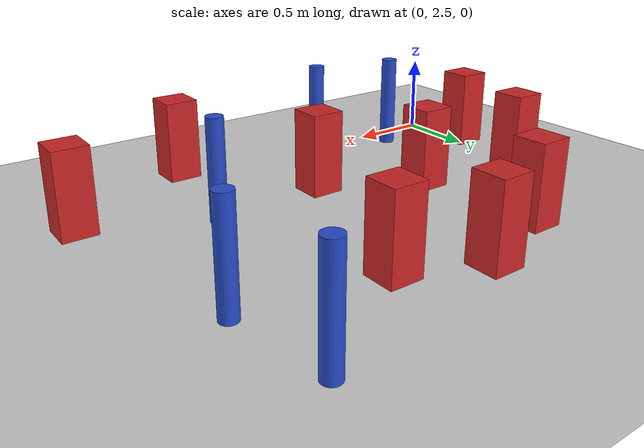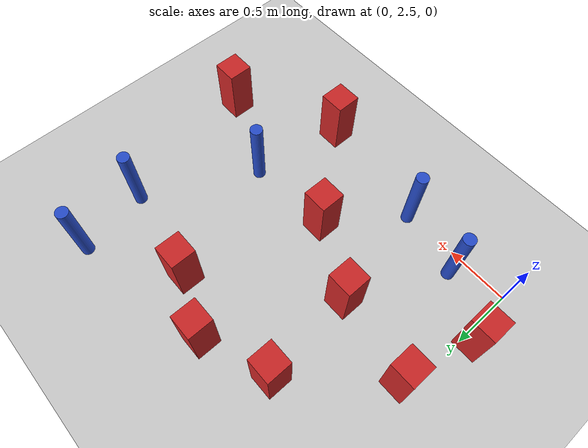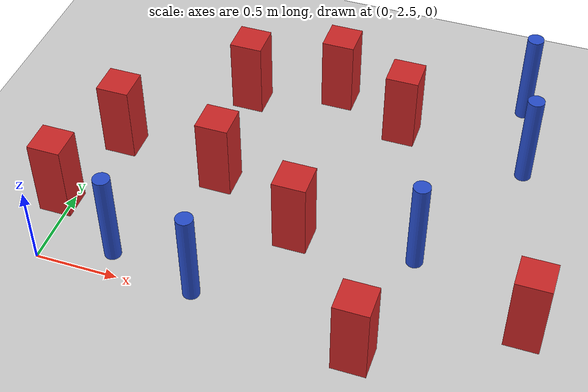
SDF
<sdf version="1.6">
 <world name="default">
  <model name="ground_plane">
   <static>1</static>
   <link name="link">
    <collision name="collision">
     <geometry><plane><normal>0 0 1</normal><size>100 100</size></plane></geometry>
     <surface><friction><ode><mu>100</mu><mu2>50</mu2></ode></friction></surface>
    </collision>
    <visual name="visual">
     <cast_shadows>0</cast_shadows>
     <geometry><plane><normal>0 0 1</normal><size>100 100</size></plane></geometry>
     <material>
      <ambient>1.0 1.0 1.0 1.0</ambient>
      <diffuse>0.8 0.8 0.8 1.0</diffuse>
      <specular>0.01 0.01 0.01 1.000000</specular>
     </material>
    </visual>
   </link>
  </model>
  <model name="square_post_obstacle31">
   <static>true</static>
   <pose>1.69926338025 4.18269708458 8.22691968438e-08 7.2212513382e-06 -7.54495500217e-07 2.29674213826e-05</pose>
   <link name="link">
    <pose>0 0 0.25 0 -0 0</pose>
    <inertial>
     <mass>100</mass>
     <inertia>
      <ixx>0.166667</ixx>
      <ixy>0</ixy>
      <ixz>0</ixz>
      <iyy>0.166667</iyy>
      <iyz>0</iyz>
      <izz>0.166667</izz>
     </inertia>
    </inertial>
    <collision name="collision"><geometry><box><size>.2 .2 .5</size></box></geometry></collision>
    <visual name="visual">
     <geometry><box><size>.2 .2 .5</size></box></geometry>
     <material>
      <script><name>Gazebo/Red</name><uri>file://media/materials/scripts/gazebo.material</uri></script>
     </material>
    </visual>
   </link>
  </model>
  <model name="square_post_obstacle38">
   <static>true</static>
   <pose>-0.0602586245994 2.94378712359 8.22691968438e-08 7.2212513382e-06 -7.54495500217e-07 2.29674213826e-05</pose>
   <link name="link">
    <pose>0 0 0.25 0 -0 0</pose>
    <inertial>
     <mass>100</mass>
     <inertia>
      <ixx>0.166667</ixx>
      <ixy>0</ixy>
      <ixz>0</ixz>
      <iyy>0.166667</iyy>
      <iyz>0</iyz>
      <izz>0.166667</izz>
     </inertia>
    </inertial>
    <collision name="collision"><geometry><box><size>.2 .2 .5</size></box></geometry></collision>
    <visual name="visual">
     <geometry><box><size>.2 .2 .5</size></box></geometry>
     <material>
      <script><name>Gazebo/Red</name><uri>file://media/materials/scripts/gazebo.material</uri></script>
     </material>
    </visual>
   </link>
  </model>
  <model name="pole_obstacle43">
   <static>true</static>
   <pose>2.50424480207 4.05057288636 2.88873142074e-08 -9.90536689859e-09 4.60219948989e-07 -1.20965994961e-07</pose>
   <link name="link">
    <pose>0 0 0.3 0 -0 0</pose>
    <inertial>
     <mass>1</mass>
     <inertia><ixx>0.145833</ixx><ixy>0</ixy><ixz>0</ixz><iyy>0.145833</iyy><iyz>0</iyz><izz>0.125</izz></inertia>
    </inertial>
    <collision name="collision">
     <geometry><cylinder><radius>0.05</radius><length>.6</length></cylinder></geometry>
    </collision>
    <visual name="visual">
     <geometry><cylinder><radius>0.05</radius><length>.6</length></cylinder></geometry>
     <material>
      <script><name>Gazebo/Blue</name><uri>file://media/materials/scripts/gazebo.material</uri></script>
     </material>
    </visual>
   </link>
  </model>
  <model name="square_post_obstacle56">
   <static>true</static>
   <pose>0.768524490775 3.41879723513 8.22691968438e-08 7.2212513382e-06 -7.54495500217e-07 2.29674213826e-05</pose>
   <link name="link">
    <pose>0 0 0.25 0 -0 0</pose>
    <inertial>
     <mass>100</mass>
     <inertia>
      <ixx>0.166667</ixx>
      <ixy>0</ixy>
      <ixz>0</ixz>
      <iyy>0.166667</iyy>
      <iyz>0</iyz>
      <izz>0.166667</izz>
     </inertia>
    </inertial>
    <collision name="collision"><geometry><box><size>.2 .2 .5</size></box></geometry></collision>
    <visual name="visual">
     <geometry><box><size>.2 .2 .5</size></box></geometry>
     <material>
      <script><name>Gazebo/Red</name><uri>file://media/materials/scripts/gazebo.material</uri></script>
     </material>
    </visual>
   </link>
  </model>
  <model name="square_post_obstacle65">
   <static>true</static>
   <pose>1.23272457439 4.38700940078 8.22691968438e-08 7.2212513382e-06 -7.54495500217e-07 2.29674213826e-05</pose>
   <link name="link">
    <pose>0 0 0.25 0 -0 0</pose>
    <inertial>
     <mass>100</mass>
     <inertia>
      <ixx>0.166667</ixx>
      <ixy>0</ixy>
      <ixz>0</ixz>
      <iyy>0.166667</iyy>
      <iyz>0</iyz>
      <izz>0.166667</izz>
     </inertia>
    </inertial>
    <collision name="collision"><geometry><box><size>.2 .2 .5</size></box></geometry></collision>
    <visual name="visual">
     <geometry><box><size>.2 .2 .5</size></box></geometry>
     <material>
      <script><name>Gazebo/Red</name><uri>file://media/materials/scripts/gazebo.material</uri></script>
     </material>
    </visual>
   </link>
  </model>
  <model name="pole_obstacle64">
   <static>true</static>
   <pose>0.941703902987 2.533534934 2.88873142074e-08 -9.90536689636e-09 4.60219948994e-07 -1.20965994958e-07</pose>
   <link name="link">
    <pose>0 0 0.3 0 -0 0</pose>
    <inertial>
     <mass>1</mass>
     <inertia><ixx>0.145833</ixx><ixy>0</ixy><ixz>0</ixz><iyy>0.145833</iyy><iyz>0</iyz><izz>0.125</izz></inertia>
    </inertial>
    <collision name="collision">
     <geometry><cylinder><radius>0.05</radius><length>.6</length></cylinder></geometry>
    </collision>
    <visual name="visual">
     <geometry><cylinder><radius>0.05</radius><length>.6</length></cylinder></geometry>
     <material>
      <script><name>Gazebo/Blue</name><uri>file://media/materials/scripts/gazebo.material</uri></script>
     </material>
    </visual>
   </link>
  </model>
  <model name="pole_obstacle96">
   <static>true</static>
   <pose>2.3952366601 4.62188282429 2.88873142074e-08 -9.90536689859e-09 4.60219948989e-07 -1.20965994961e-07</pose>
   <link name="link">
    <pose>0 0 0.3 0 -0 0</pose>
    <inertial>
     <mass>1</mass>
     <inertia><ixx>0.145833</ixx><ixy>0</ixy><ixz>0</ixz><iyy>0.145833</iyy><iyz>0</iyz><izz>0.125</izz></inertia>
    </inertial>
    <collision name="collision">
     <geometry><cylinder><radius>0.05</radius><length>.6</length></cylinder></geometry>
    </collision>
    <visual name="visual">
     <geometry><cylinder><radius>0.05</radius><length>.6</length></cylinder></geometry>
     <material>
      <script><name>Gazebo/Blue</name><uri>file://media/materials/scripts/gazebo.material</uri></script>
     </material>
    </visual>
   </link>
  </model>
  <model name="square_post_obstacle135">
   <static>true</static>
   <pose>2.74764541 2.83754624088 8.22691968438e-08 7.2212513382e-06 -7.54495500217e-07 2.29674213826e-05</pose>
   <link name="link">
    <pose>0 0 0.25 0 -0 0</pose>
    <inertial>
     <mass>100</mass>
     <inertia>
      <ixx>0.166667</ixx>
      <ixy>0</ixy>
      <ixz>0</ixz>
      <iyy>0.166667</iyy>
      <iyz>0</iyz>
      <izz>0.166667</izz>
     </inertia>
    </inertial>
    <collision name="collision"><geometry><box><size>.2 .2 .5</size></box></geometry></collision>
    <visual name="visual">
     <geometry><box><size>.2 .2 .5</size></box></geometry>
     <material>
      <script><name>Gazebo/Red</name><uri>file://media/materials/scripts/gazebo.material</uri></script>
     </material>
    </visual>
   </link>
  </model>
  <model name="square_post_obstacle159">
   <static>true</static>
   <pose>1.9224101247 2.39501508181 8.22691968438e-08 7.2212513382e-06 -7.54495500217e-07 2.29674213826e-05</pose>
   <link name="link">
    <pose>0 0 0.25 0 -0 0</pose>
    <inertial>
     <mass>100</mass>
     <inertia>
      <ixx>0.166667</ixx>
      <ixy>0</ixy>
      <ixz>0</ixz>
      <iyy>0.166667</iyy>
      <iyz>0</iyz>
      <izz>0.166667</izz>
     </inertia>
    </inertial>
    <collision name="collision"><geometry><box><size>.2 .2 .5</size></box></geometry></collision>
    <visual name="visual">
     <geometry><box><size>.2 .2 .5</size></box></geometry>
     <material>
      <script><name>Gazebo/Red</name><uri>file://media/materials/scripts/gazebo.material</uri></script>
     </material>
    </visual>
   </link>
  </model>
  <model name="square_post_obstacle178">
   <static>true</static>
   <pose>0.692662502641 4.18692140781 8.22691968438e-08 7.2212513382e-06 -7.54495500217e-07 2.29674213826e-05</pose>
   <link name="link">
    <pose>0 0 0.25 0 -0 0</pose>
    <inertial>
     <mass>100</mass>
     <inertia>
      <ixx>0.166667</ixx>
      <ixy>0</ixy>
      <ixz>0</ixz>
      <iyy>0.166667</iyy>
      <iyz>0</iyz>
      <izz>0.166667</izz>
     </inertia>
    </inertial>
    <collision name="collision"><geometry><box><size>.2 .2 .5</size></box></geometry></collision>
    <visual name="visual">
     <geometry><box><size>.2 .2 .5</size></box></geometry>
     <material>
      <script><name>Gazebo/Red</name><uri>file://media/materials/scripts/gazebo.material</uri></script>
     </material>
    </visual>
   </link>
  </model>
  <model name="square_post_obstacle180">
   <static>true</static>
   <pose>1.34783124726 3.1108414837 8.22691968438e-08 7.2212513382e-06 -7.54495500217e-07 2.29674213826e-05</pose>
   <link name="link">
    <pose>0 0 0.25 0 -0 0</pose>
    <inertial>
     <mass>100</mass>
     <inertia>
      <ixx>0.166667</ixx>
      <ixy>0</ixy>
      <ixz>0</ixz>
      <iyy>0.166667</iyy>
      <iyz>0</iyz>
      <izz>0.166667</izz>
     </inertia>
    </inertial>
    <collision name="collision"><geometry><box><size>.2 .2 .5</size></box></geometry></collision>
    <visual name="visual">
     <geometry><box><size>.2 .2 .5</size></box></geometry>
     <material>
      <script><name>Gazebo/Red</name><uri>file://media/materials/scripts/gazebo.material</uri></script>
     </material>
    </visual>
   </link>
  </model>
  <model name="pole_obstacle192">
   <static>true</static>
   <pose>2.05589646519 3.15686019915 2.88873142074e-08 -9.90536690232e-09 4.6021994898e-07 -1.20965994968e-07</pose>
   <link name="link">
    <pose>0 0 0.3 0 -0 0</pose>
    <inertial>
     <mass>1</mass>
     <inertia><ixx>0.145833</ixx><ixy>0</ixy><ixz>0</ixz><iyy>0.145833</iyy><iyz>0</iyz><izz>0.125</izz></inertia>
    </inertial>
    <collision name="collision">
     <geometry><cylinder><radius>0.05</radius><length>.6</length></cylinder></geometry>
    </collision>
    <visual name="visual">
     <geometry><cylinder><radius>0.05</radius><length>.6</length></cylinder></geometry>
     <material>
      <script><name>Gazebo/Blue</name><uri>file://media/materials/scripts/gazebo.material</uri></script>
     </material>
    </visual>
   </link>
  </model>
  <model name="pole_obstacle195">
   <static>true</static>
   <pose>0.404799881524 2.66005291334 2.88873142074e-08 -9.90536689663e-09 4.60219948993e-07 -1.20965994959e-07</pose>
   <link name="link">
    <pose>0 0 0.3 0 -0 0</pose>
    <inertial>
     <mass>1</mass>
     <inertia><ixx>0.145833</ixx><ixy>0</ixy><ixz>0</ixz><iyy>0.145833</iyy><iyz>0</iyz><izz>0.125</izz></inertia>
    </inertial>
    <collision name="collision">
     <geometry><cylinder><radius>0.05</radius><length>.6</length></cylinder></geometry>
    </collision>
    <visual name="visual">
     <geometry><cylinder><radius>0.05</radius><length>.6</length></cylinder></geometry>
     <material>
      <script><name>Gazebo/Blue</name><uri>file://media/materials/scripts/gazebo.material</uri></script>
     </material>
    </visual>
   </link>
  </model>
  <model name="square_post_obstacle220">
   <static>true</static>
   <pose>0.0863600326216 3.53785996466 8.22691968438e-08 7.2212513382e-06 -7.54495500217e-07 2.29674213826e-05</pose>
   <link name="link">
    <pose>0 0 0.25 0 -0 0</pose>
    <inertial>
     <mass>100</mass>
     <inertia>
      <ixx>0.166667</ixx>
      <ixy>0</ixy>
      <ixz>0</ixz>
      <iyy>0.166667</iyy>
      <iyz>0</iyz>
      <izz>0.166667</izz>
     </inertia>
    </inertial>
    <collision name="collision"><geometry><box><size>.2 .2 .5</size></box></geometry></collision>
    <visual name="visual">
     <geometry><box><size>.2 .2 .5</size></box></geometry>
     <material>
      <script><name>Gazebo/Red</name><uri>file://media/materials/scripts/gazebo.material</uri></script>
     </material>
    </visual>
   </link>
  </model>
 </world>
</sdf>
